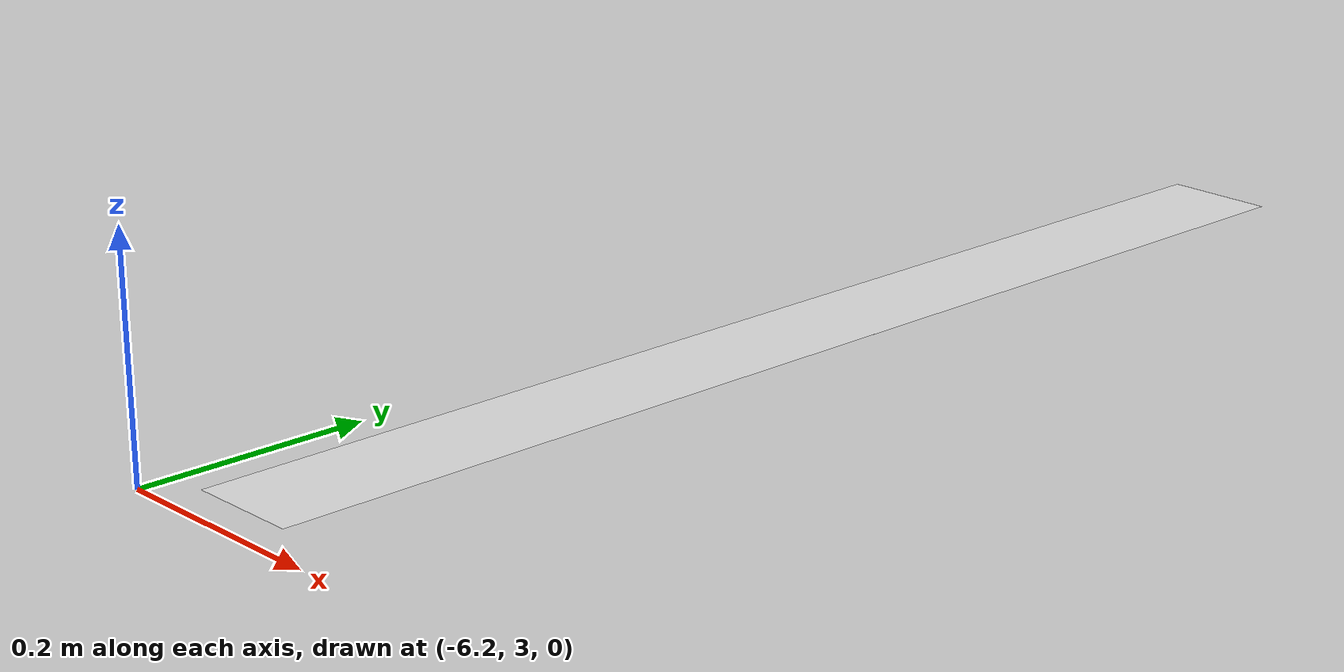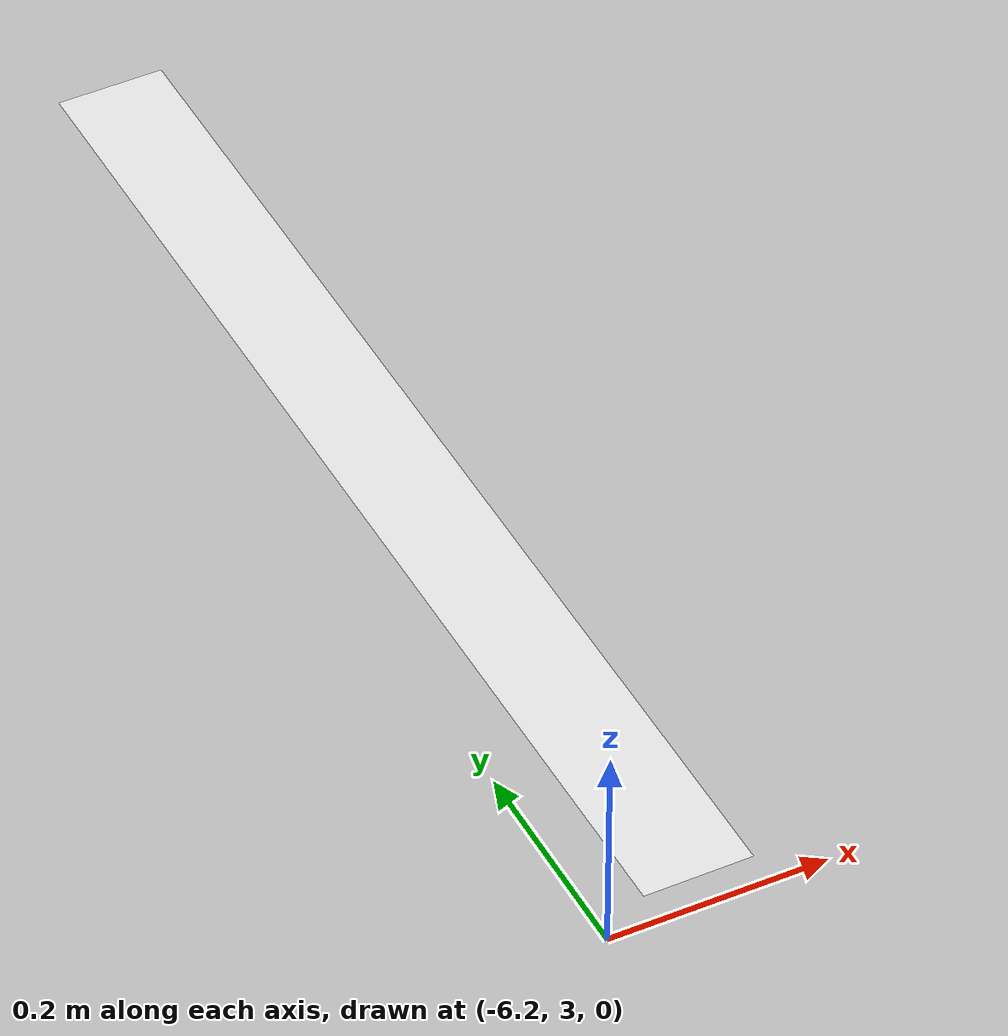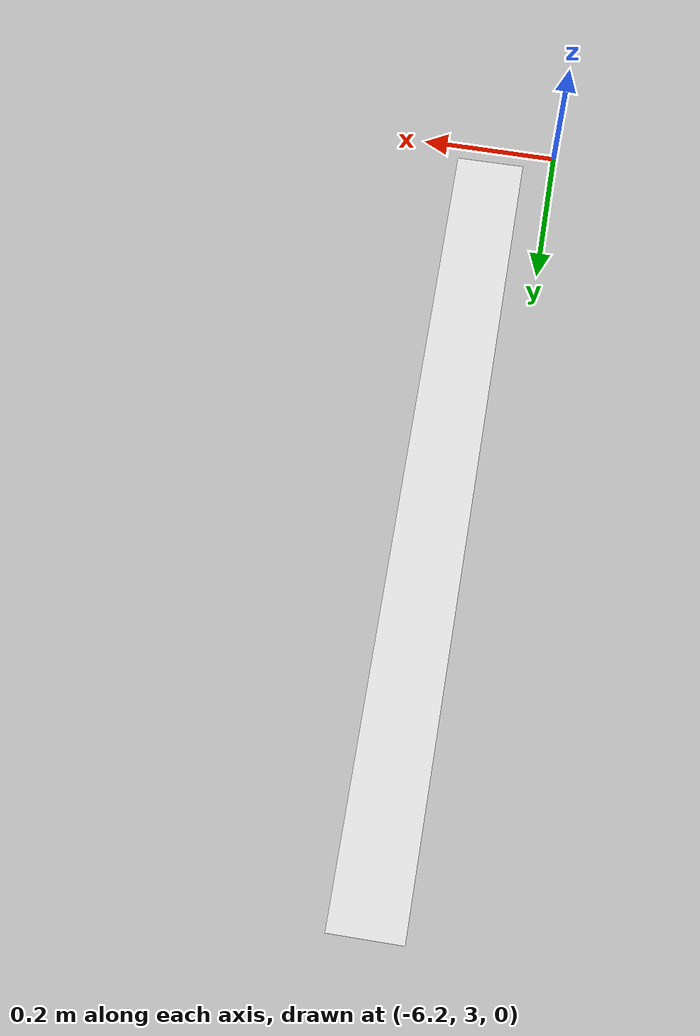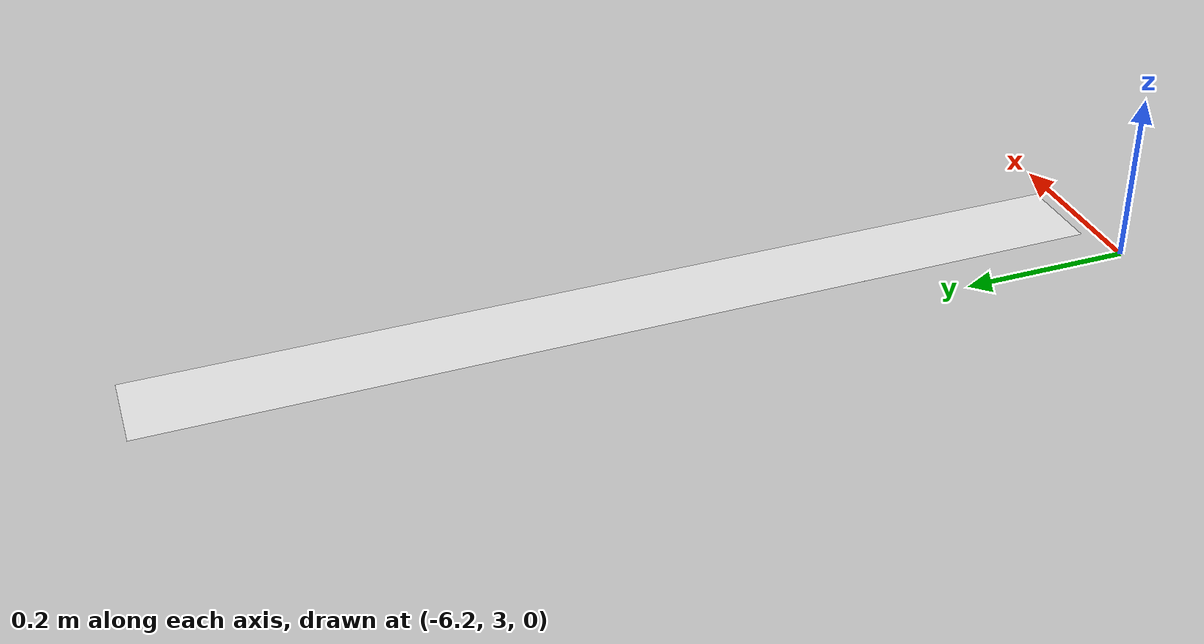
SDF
<sdf version="1.6">
 <model name="roadSystem">
  <model name="roadmark_mid">
   <link name="link">
    <pose>-2.29682 2.593 0.0001 0 -0 0</pose>
    <inertial>
     <mass>0.0807885</mass>
     <inertia>
      <ixx>3.572e-05</ixx>
      <ixy>0</ixy>
      <ixz>0</ixz>
      <iyy>0.00838261</iyy>
      <iyz>0</iyz>
      <izz>0.00841742</izz>
     </inertia>
    </inertial>
    <visual name="visual">
     <geometry><box><size>1.1 0.1 1e-06</size></box></geometry>
     <material>
      <script><name>Gazebo/White</name><uri>file://media/materials/scripts/gazebo.material</uri></script>
      <shader type="pixel"><normal_map>__default__</normal_map></shader>
      <ambient>1 1 1 1</ambient>
      <diffuse>0.7 0.7 0.7 0</diffuse>
      <specular>0.01 0.01 0.01 0</specular>
      <emissive>0 0 0 1</emissive>
      <lighting>0</lighting>
     </material>
    </visual>
    <collision name="collision">
     <geometry><box><size>1.11582 0.072377 0.008224</size></box></geometry>
     <surface>
      <friction>
       <ode><mu>1</mu><mu2>1</mu2><fdir1>0 0 0</fdir1><slip1>0</slip1><slip2>0</slip2></ode>
       <torsional>
        <coefficient>1</coefficient>
        <patch_radius>0</patch_radius>
        <surface_radius>0</surface_radius>
        <use_patch_radius>1</use_patch_radius>
        <ode><slip>0</slip></ode>
       </torsional>
      </friction>
      <bounce><restitution_coefficient>0</restitution_coefficient><threshold>1e+06</threshold></bounce>
      <contact>
       <collide_without_contact>0</collide_without_contact>
       <collide_without_contact_bitmask>1</collide_without_contact_bitmask>
       <collide_bitmask>1</collide_bitmask>
       <ode>
        <soft_cfm>0</soft_cfm>
        <soft_erp>0.2</soft_erp>
        <kp>1e+13</kp>
        <kd>1</kd>
        <max_vel>0.01</max_vel>
        <min_depth>0</min_depth>
       </ode>
       <bullet>
        <split_impulse>1</split_impulse>
        <split_impulse_penetration_threshold>-0.01</split_impulse_penetration_threshold>
        <soft_cfm>0</soft_cfm>
        <soft_erp>0.2</soft_erp>
        <kp>1e+13</kp>
        <kd>1</kd>
       </bullet>
      </contact>
     </surface>
    </collision>
   </link>
   <static>0</static>
   <pose>-3.52595 5.88411 0.006303 0 -0 1.57573</pose>
  </model>
  <static>0</static>
 </model>
</sdf>
